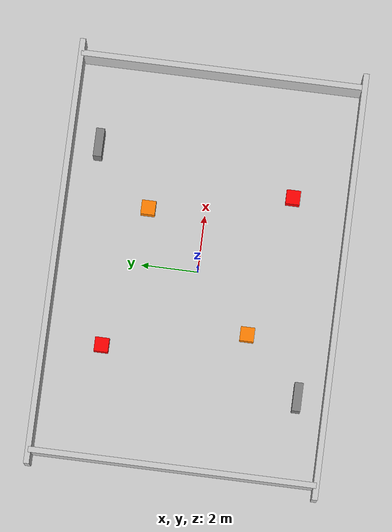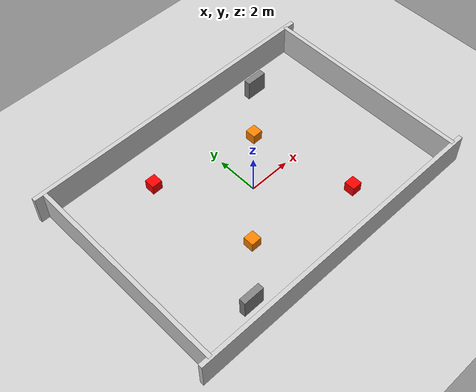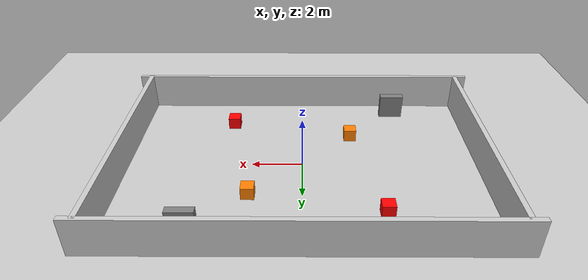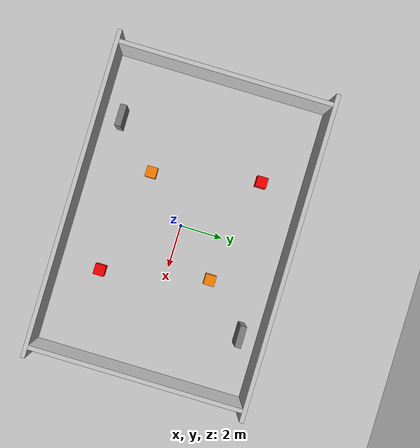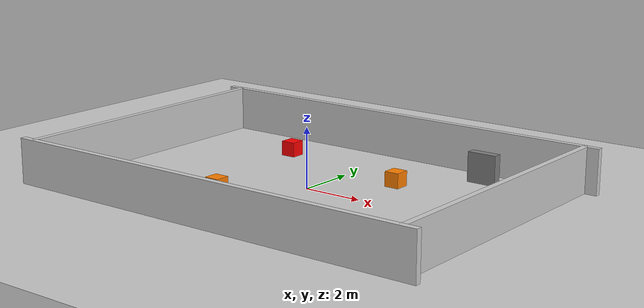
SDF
<?xml version="1.0"?>
<sdf version="1.6">
  <world name="warehouse">
    <include>
      <uri>model://sun</uri>
    </include>
    <include>
      <uri>model://ground_plane</uri>
    </include>

    <!-- Paredes del entorno tipo almacén -->
    <model name="wall_1">
      <static>true</static>
      <pose>0 5.0 0.75 0 0 0</pose>
      <link name="body">
        <collision name="collision">
          <geometry>
            <box>
              <size>15.0 0.2 1.5</size>
            </box>
          </geometry>
        </collision>
        <visual name="visual">
          <geometry>
            <box>
              <size>15.0 0.2 1.5</size>
            </box>
          </geometry>
          <material>
            <ambient>0.8 0.8 0.8 1</ambient>
            <diffuse>0.8 0.8 0.8 1</diffuse>
          </material>
        </visual>
      </link>
    </model>

    <model name="wall_2">
      <static>true</static>
      <pose>0 -5.0 0.75 0 0 0</pose>
      <link name="body">
        <collision name="collision">
          <geometry>
            <box>
              <size>15.0 0.2 1.5</size>
            </box>
          </geometry>
        </collision>
        <visual name="visual">
          <geometry>
            <box>
              <size>15.0 0.2 1.5</size>
            </box>
          </geometry>
          <material>
            <ambient>0.8 0.8 0.8 1</ambient>
            <diffuse>0.8 0.8 0.8 1</diffuse>
          </material>
        </visual>
      </link>
    </model>

    <model name="wall_3">
      <static>true</static>
      <pose>-7.0 0 0.75 0 0 1.5708</pose>
      <link name="body">
        <collision name="collision">
          <geometry>
            <box>
              <size>10.0 0.2 1.5</size>
            </box>
          </geometry>
        </collision>
        <visual name="visual">
          <geometry>
            <box>
              <size>10.0 0.2 1.5</size>
            </box>
          </geometry>
          <material>
            <ambient>0.8 0.8 0.8 1</ambient>
            <diffuse>0.8 0.8 0.8 1</diffuse>
          </material>
        </visual>
      </link>
    </model>

    <model name="wall_4">
      <static>true</static>
      <pose>7.0 0 0.75 0 0 1.5708</pose>
      <link name="body">
        <collision name="collision">
          <geometry>
            <box>
              <size>10.0 0.2 1.5</size>
            </box>
          </geometry>
        </collision>
        <visual name="visual">
          <geometry>
            <box>
              <size>10.0 0.2 1.5</size>
            </box>
          </geometry>
          <material>
            <ambient>0.8 0.8 0.8 1</ambient>
            <diffuse>0.8 0.8 0.8 1</diffuse>
          </material>
        </visual>
      </link>
    </model>

    <!-- Pasillos internos -->
    <model name="obstacle_1">
      <static>true</static>
      <pose>-2.0 -2.0 0.25 0 0 0</pose>
      <link name="body">
        <collision name="collision">
          <geometry>
            <box>
              <size>0.5 0.5 0.5</size>
            </box>
          </geometry>
        </collision>
        <visual name="visual">
          <geometry>
            <box>
              <size>0.5 0.5 0.5</size>
            </box>
          </geometry>
          <material>
            <ambient>1 0.5 0 1</ambient>
            <diffuse>1 0.5 0 1</diffuse>
          </material>
        </visual>
      </link>
    </model>

    <model name="obstacle_2">
      <static>true</static>
      <pose>2.0 2.0 0.25 0 0 0</pose>
      <link name="body">
        <collision name="collision">
          <geometry>
            <box>
              <size>0.5 0.5 0.5</size>
            </box>
          </geometry>
        </collision>
        <visual name="visual">
          <geometry>
            <box>
              <size>0.5 0.5 0.5</size>
            </box>
          </geometry>
          <material>
            <ambient>1 0.5 0 1</ambient>
            <diffuse>1 0.5 0 1</diffuse>
          </material>
        </visual>
      </link>
    </model>

    <model name="obstacle_3">
      <static>true</static>
      <pose>-3.0 3.0 0.25 0 0 0</pose>
      <link name="body">
        <collision name="collision">
          <geometry>
            <box>
              <size>0.5 0.5 0.5</size>
            </box>
          </geometry>
        </collision>
        <visual name="visual">
          <geometry>
            <box>
              <size>0.5 0.5 0.5</size>
            </box>
          </geometry>
          <material>
            <ambient>1 0 0 1</ambient>
            <diffuse>1 0 0 1</diffuse>
          </material>
        </visual>
      </link>
    </model>

    <model name="obstacle_4">
      <static>true</static>
      <pose>3.0 -3.0 0.25 0 0 0</pose>
      <link name="body">
        <collision name="collision">
          <geometry>
            <box>
              <size>0.5 0.5 0.5</size>
            </box>
          </geometry>
        </collision>
        <visual name="visual">
          <geometry>
            <box>
              <size>0.5 0.5 0.5</size>
            </box>
          </geometry>
          <material>
            <ambient>1 0 0 1</ambient>
            <diffuse>1 0 0 1</diffuse>
          </material>
        </visual>
      </link>
    </model>

    <!-- Estanterías (racks) -->
    <model name="shelf_1">
      <static>true</static>
      <pose>-4.0 -4.0 0.50 0 0 0</pose>
      <link name="body">
        <collision name="collision">
          <geometry>
            <box>
              <size>1.0 0.3 1.0</size>
            </box>
          </geometry>
        </collision>
        <visual name="visual">
          <geometry>
            <box>
              <size>1.0 0.3 1.0</size>
            </box>
          </geometry>
          <material>
            <ambient>0.5 0.5 0.5 1</ambient>
            <diffuse>0.5 0.5 0.5 1</diffuse>
          </material>
        </visual>
      </link>
    </model>

    <model name="shelf_2">
      <static>true</static>
      <pose>4.0 4.0 0.50 0 0 0</pose>
      <link name="body">
        <collision name="collision">
          <geometry>
            <box>
              <size>1.0 0.3 1.0</size>
            </box>
          </geometry>
        </collision>
        <visual name="visual">
          <geometry>
            <box>
              <size>1.0 0.3 1.0</size>
            </box>
          </geometry>
          <material>
            <ambient>0.5 0.5 0.5 1</ambient>
            <diffuse>0.5 0.5 0.5 1</diffuse>
          </material>
        </visual>
      </link>
    </model>
  </world>
</sdf>
